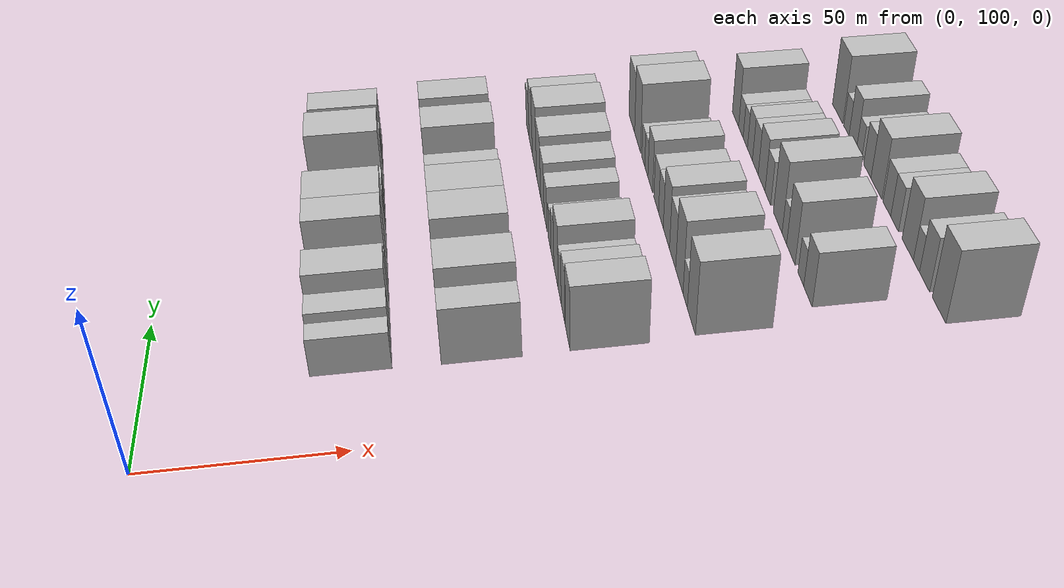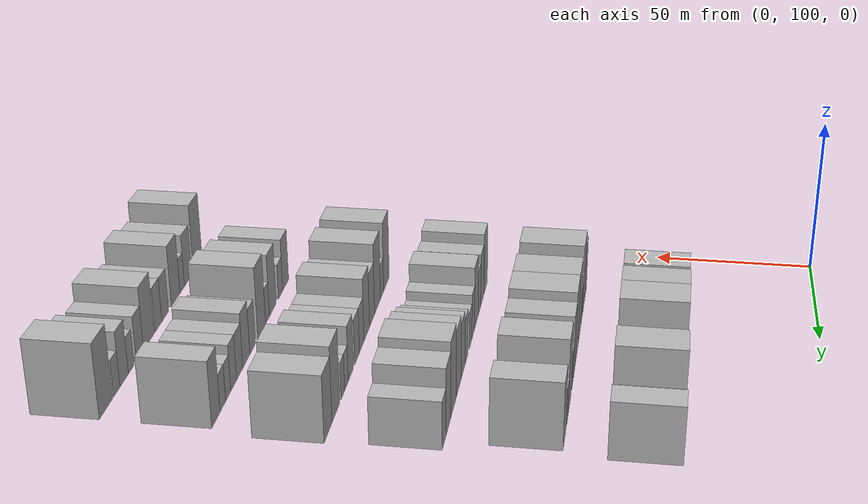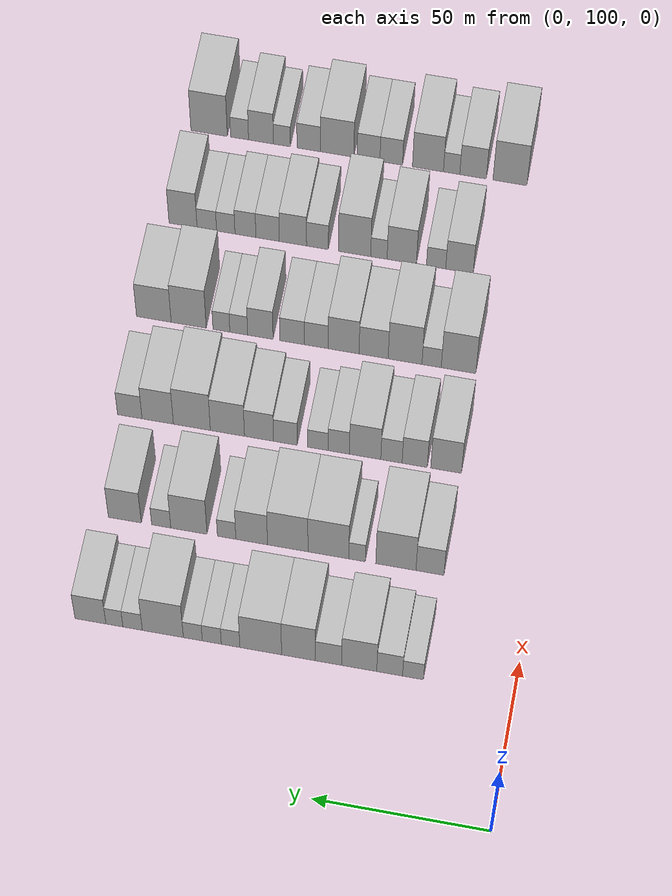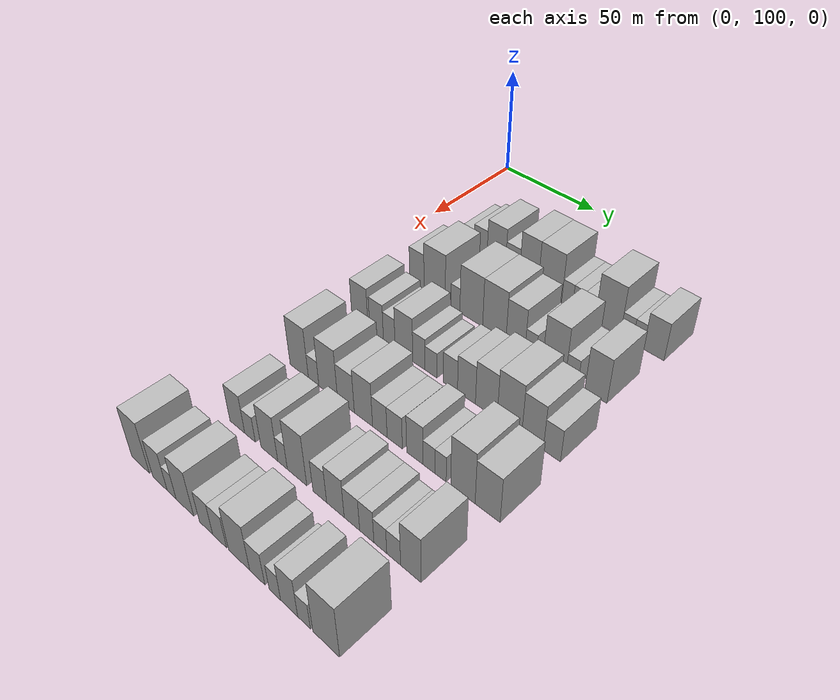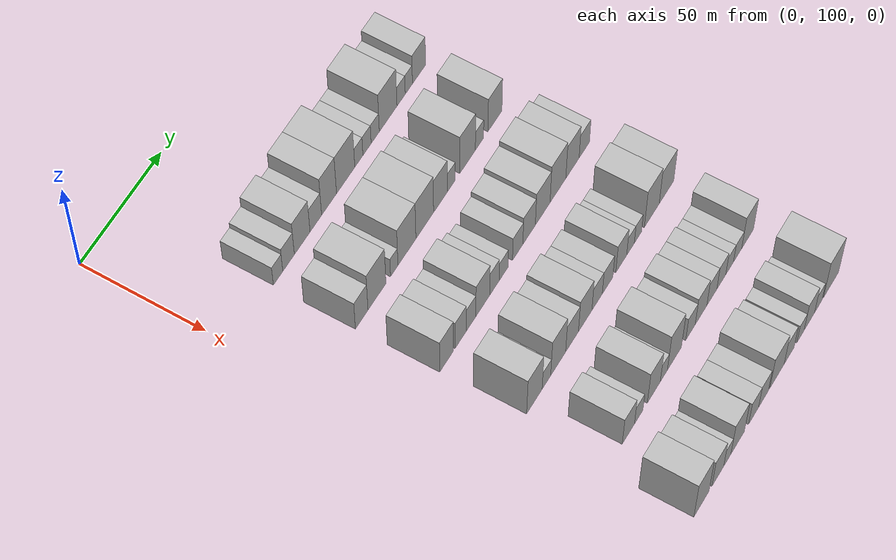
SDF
<sdf version="1.6">
 <world name="default">
  <model name="building_72">
   <static>1</static>
   <pose>50.0000 128.7161 0 0.000000 0.000000 0.000000</pose>
   <link name="link">
    <pose>0 0 6.00 0 0 0</pose>
    <collision name="collision"><geometry><box><size>20.0000 5.9323 12.0000</size></box></geometry></collision>
    <visual name="visual">
     <cast_shadows>0</cast_shadows>
     <geometry><box><size>20.0000 5.9323 12.0000</size></box></geometry>
     <material>
      <script>
       <uri>model://HANNAS_wall/materials/scripts</uri>
       <uri>model://HANNAS_wall/materials/textures</uri>
       <name>vrc/HANNAS_wall</name>
      </script>
     </material>
    </visual>
   </link>
  </model>
  <model name="building_73">
   <static>1</static>
   <pose>50.0000 135.3491 0 0.000000 0.000000 0.000000</pose>
   <link name="link">
    <pose>0 0 7.50 0 0 0</pose>
    <collision name="collision"><geometry><box><size>20.0000 7.3336 15.0000</size></box></geometry></collision>
    <visual name="visual">
     <cast_shadows>0</cast_shadows>
     <geometry><box><size>20.0000 7.3336 15.0000</size></box></geometry>
     <material>
      <script>
       <uri>model://HANNAS_wall/materials/scripts</uri>
       <uri>model://HANNAS_wall/materials/textures</uri>
       <name>vrc/HANNAS_wall</name>
      </script>
     </material>
    </visual>
   </link>
  </model>
  <model name="building_74">
   <static>1</static>
   <pose>50.0000 144.0091 0 0.000000 0.000000 0.000000</pose>
   <link name="link">
    <pose>0 0 10.50 0 0 0</pose>
    <collision name="collision"><geometry><box><size>20.0000 9.9865 21.0000</size></box></geometry></collision>
    <visual name="visual">
     <cast_shadows>0</cast_shadows>
     <geometry><box><size>20.0000 9.9865 21.0000</size></box></geometry>
     <material>
      <script>
       <uri>model://HANNAS_wall/materials/scripts</uri>
       <uri>model://HANNAS_wall/materials/textures</uri>
       <name>vrc/HANNAS_wall</name>
      </script>
     </material>
    </visual>
   </link>
  </model>
  <model name="building_75">
   <static>1</static>
   <pose>50.0000 152.7264 0 0.000000 0.000000 0.000000</pose>
   <link name="link">
    <pose>0 0 7.50 0 0 0</pose>
    <collision name="collision"><geometry><box><size>20.0000 7.4480 15.0000</size></box></geometry></collision>
    <visual name="visual">
     <cast_shadows>0</cast_shadows>
     <geometry><box><size>20.0000 7.4480 15.0000</size></box></geometry>
     <material>
      <script>
       <uri>model://HANNAS_wall/materials/scripts</uri>
       <uri>model://HANNAS_wall/materials/textures</uri>
       <name>vrc/HANNAS_wall</name>
      </script>
     </material>
    </visual>
   </link>
  </model>
  <model name="building_76">
   <static>1</static>
   <pose>50.0000 161.2679 0 0.000000 0.000000 0.000000</pose>
   <link name="link">
    <pose>0 0 12.00 0 0 0</pose>
    <collision name="collision"><geometry><box><size>20.0000 9.6351 24.0000</size></box></geometry></collision>
    <visual name="visual">
     <cast_shadows>0</cast_shadows>
     <geometry><box><size>20.0000 9.6351 24.0000</size></box></geometry>
     <material>
      <script>
       <uri>model://HANNAS_wall/materials/scripts</uri>
       <uri>model://HANNAS_wall/materials/textures</uri>
       <name>vrc/HANNAS_wall</name>
      </script>
     </material>
    </visual>
   </link>
  </model>
  <model name="building_77">
   <static>1</static>
   <pose>50.0000 172.0378 0 0.000000 0.000000 0.000000</pose>
   <link name="link">
    <pose>0 0 12.00 0 0 0</pose>
    <collision name="collision"><geometry><box><size>20.0000 11.9045 24.0000</size></box></geometry></collision>
    <visual name="visual">
     <cast_shadows>0</cast_shadows>
     <geometry><box><size>20.0000 11.9045 24.0000</size></box></geometry>
     <material>
      <script>
       <uri>model://HANNAS_wall/materials/scripts</uri>
       <uri>model://HANNAS_wall/materials/textures</uri>
       <name>vrc/HANNAS_wall</name>
      </script>
     </material>
    </visual>
   </link>
  </model>
  <model name="building_78">
   <static>1</static>
   <pose>50.0000 180.6485 0 0.000000 0.000000 0.000000</pose>
   <link name="link">
    <pose>0 0 6.00 0 0 0</pose>
    <collision name="collision"><geometry><box><size>20.0000 5.3170 12.0000</size></box></geometry></collision>
    <visual name="visual">
     <cast_shadows>0</cast_shadows>
     <geometry><box><size>20.0000 5.3170 12.0000</size></box></geometry>
     <material>
      <script>
       <uri>model://HANNAS_wall/materials/scripts</uri>
       <uri>model://HANNAS_wall/materials/textures</uri>
       <name>vrc/HANNAS_wall</name>
      </script>
     </material>
    </visual>
   </link>
  </model>
  <model name="building_79">
   <static>1</static>
   <pose>50.0000 186.0152 0 0.000000 0.000000 0.000000</pose>
   <link name="link">
    <pose>0 0 6.00 0 0 0</pose>
    <collision name="collision"><geometry><box><size>20.0000 5.4164 12.0000</size></box></geometry></collision>
    <visual name="visual">
     <cast_shadows>0</cast_shadows>
     <geometry><box><size>20.0000 5.4164 12.0000</size></box></geometry>
     <material>
      <script>
       <uri>model://HANNAS_wall/materials/scripts</uri>
       <uri>model://HANNAS_wall/materials/textures</uri>
       <name>vrc/HANNAS_wall</name>
      </script>
     </material>
    </visual>
   </link>
  </model>
  <model name="building_80">
   <static>1</static>
   <pose>50.0000 191.4409 0 0.000000 0.000000 0.000000</pose>
   <link name="link">
    <pose>0 0 6.00 0 0 0</pose>
    <collision name="collision"><geometry><box><size>20.0000 5.4349 12.0000</size></box></geometry></collision>
    <visual name="visual">
     <cast_shadows>0</cast_shadows>
     <geometry><box><size>20.0000 5.4349 12.0000</size></box></geometry>
     <material>
      <script>
       <uri>model://HANNAS_wall/materials/scripts</uri>
       <uri>model://HANNAS_wall/materials/textures</uri>
       <name>vrc/HANNAS_wall</name>
      </script>
     </material>
    </visual>
   </link>
  </model>
  <model name="building_81">
   <static>1</static>
   <pose>50.0000 200.0442 0 0.000000 0.000000 0.000000</pose>
   <link name="link">
    <pose>0 0 12.00 0 0 0</pose>
    <collision name="collision"><geometry><box><size>20.0000 11.7718 24.0000</size></box></geometry></collision>
    <visual name="visual">
     <cast_shadows>0</cast_shadows>
     <geometry><box><size>20.0000 11.7718 24.0000</size></box></geometry>
     <material>
      <script>
       <uri>model://HANNAS_wall/materials/scripts</uri>
       <uri>model://HANNAS_wall/materials/textures</uri>
       <name>vrc/HANNAS_wall</name>
      </script>
     </material>
    </visual>
   </link>
  </model>
  <model name="building_82">
   <static>1</static>
   <pose>50.0000 208.7123 0 0.000000 0.000000 0.000000</pose>
   <link name="link">
    <pose>0 0 6.00 0 0 0</pose>
    <collision name="collision"><geometry><box><size>20.0000 5.5643 12.0000</size></box></geometry></collision>
    <visual name="visual">
     <cast_shadows>0</cast_shadows>
     <geometry><box><size>20.0000 5.5643 12.0000</size></box></geometry>
     <material>
      <script>
       <uri>model://HANNAS_wall/materials/scripts</uri>
       <uri>model://HANNAS_wall/materials/textures</uri>
       <name>vrc/HANNAS_wall</name>
      </script>
     </material>
    </visual>
   </link>
  </model>
  <model name="building_83">
   <static>1</static>
   <pose>50.0000 213.9297 0 0.000000 0.000000 0.000000</pose>
   <link name="link">
    <pose>0 0 6.00 0 0 0</pose>
    <collision name="collision"><geometry><box><size>20.0000 4.8705 12.0000</size></box></geometry></collision>
    <visual name="visual">
     <cast_shadows>0</cast_shadows>
     <geometry><box><size>20.0000 4.8705 12.0000</size></box></geometry>
     <material>
      <script>
       <uri>model://HANNAS_wall/materials/scripts</uri>
       <uri>model://HANNAS_wall/materials/textures</uri>
       <name>vrc/HANNAS_wall</name>
      </script>
     </material>
    </visual>
   </link>
  </model>
  <model name="building_84">
   <static>1</static>
   <pose>50.0000 220.8197 0 0.000000 0.000000 0.000000</pose>
   <link name="link">
    <pose>0 0 9.00 0 0 0</pose>
    <collision name="collision"><geometry><box><size>20.0000 8.9095 18.0000</size></box></geometry></collision>
    <visual name="visual">
     <cast_shadows>0</cast_shadows>
     <geometry><box><size>20.0000 8.9095 18.0000</size></box></geometry>
     <material>
      <script>
       <uri>model://HANNAS_wall/materials/scripts</uri>
       <uri>model://HANNAS_wall/materials/textures</uri>
       <name>vrc/HANNAS_wall</name>
      </script>
     </material>
    </visual>
   </link>
  </model>
  <model name="building_195">
   <static>1</static>
   <pose>82.0000 129.4393 0 0.000000 0.000000 0.000000</pose>
   <link name="link">
    <pose>0 0 9.00 0 0 0</pose>
    <collision name="collision"><geometry><box><size>20.0000 8.0487 18.0000</size></box></geometry></collision>
    <visual name="visual">
     <cast_shadows>0</cast_shadows>
     <geometry><box><size>20.0000 8.0487 18.0000</size></box></geometry>
     <material>
      <script>
       <uri>model://HANNAS_wall/materials/scripts</uri>
       <uri>model://HANNAS_wall/materials/textures</uri>
       <name>vrc/HANNAS_wall</name>
      </script>
     </material>
    </visual>
   </link>
  </model>
  <model name="building_196">
   <static>1</static>
   <pose>82.0000 139.2432 0 0.000000 0.000000 0.000000</pose>
   <link name="link">
    <pose>0 0 12.00 0 0 0</pose>
    <collision name="collision"><geometry><box><size>20.0000 11.5591 24.0000</size></box></geometry></collision>
    <visual name="visual">
     <cast_shadows>0</cast_shadows>
     <geometry><box><size>20.0000 11.5591 24.0000</size></box></geometry>
     <material>
      <script>
       <uri>model://HANNAS_wall/materials/scripts</uri>
       <uri>model://HANNAS_wall/materials/textures</uri>
       <name>vrc/HANNAS_wall</name>
      </script>
     </material>
    </visual>
   </link>
  </model>
  <model name="building_197">
   <static>1</static>
   <pose>82.0000 150.4244 0 0.000000 0.000000 0.000000</pose>
   <link name="link">
    <pose>0 0 6.00 0 0 0</pose>
    <collision name="collision"><geometry><box><size>20.0000 4.8032 12.0000</size></box></geometry></collision>
    <visual name="visual">
     <cast_shadows>0</cast_shadows>
     <geometry><box><size>20.0000 4.8032 12.0000</size></box></geometry>
     <material>
      <script>
       <uri>model://HANNAS_wall/materials/scripts</uri>
       <uri>model://HANNAS_wall/materials/textures</uri>
       <name>vrc/HANNAS_wall</name>
      </script>
     </material>
    </visual>
   </link>
  </model>
  <model name="building_198">
   <static>1</static>
   <pose>82.0000 158.7117 0 0.000000 0.000000 0.000000</pose>
   <link name="link">
    <pose>0 0 12.00 0 0 0</pose>
    <collision name="collision"><geometry><box><size>20.0000 11.7715 24.0000</size></box></geometry></collision>
    <visual name="visual">
     <cast_shadows>0</cast_shadows>
     <geometry><box><size>20.0000 11.7715 24.0000</size></box></geometry>
     <material>
      <script>
       <uri>model://HANNAS_wall/materials/scripts</uri>
       <uri>model://HANNAS_wall/materials/textures</uri>
       <name>vrc/HANNAS_wall</name>
      </script>
     </material>
    </visual>
   </link>
  </model>
  <model name="building_199">
   <static>1</static>
   <pose>82.0000 170.4356 0 0.000000 0.000000 0.000000</pose>
   <link name="link">
    <pose>0 0 12.00 0 0 0</pose>
    <collision name="collision"><geometry><box><size>20.0000 11.6763 24.0000</size></box></geometry></collision>
    <visual name="visual">
     <cast_shadows>0</cast_shadows>
     <geometry><box><size>20.0000 11.6763 24.0000</size></box></geometry>
     <material>
      <script>
       <uri>model://HANNAS_wall/materials/scripts</uri>
       <uri>model://HANNAS_wall/materials/textures</uri>
       <name>vrc/HANNAS_wall</name>
      </script>
     </material>
    </visual>
   </link>
  </model>
  <model name="building_200">
   <static>1</static>
   <pose>82.0000 180.8566 0 0.000000 0.000000 0.000000</pose>
   <link name="link">
    <pose>0 0 10.50 0 0 0</pose>
    <collision name="collision"><geometry><box><size>20.0000 9.1656 21.0000</size></box></geometry></collision>
    <visual name="visual">
     <cast_shadows>0</cast_shadows>
     <geometry><box><size>20.0000 9.1656 21.0000</size></box></geometry>
     <material>
      <script>
       <uri>model://HANNAS_wall/materials/scripts</uri>
       <uri>model://HANNAS_wall/materials/textures</uri>
       <name>vrc/HANNAS_wall</name>
      </script>
     </material>
    </visual>
   </link>
  </model>
  <model name="building_201">
   <static>1</static>
   <pose>82.0000 188.1111 0 0.000000 0.000000 0.000000</pose>
   <link name="link">
    <pose>0 0 6.00 0 0 0</pose>
    <collision name="collision"><geometry><box><size>20.0000 5.3434 12.0000</size></box></geometry></collision>
    <visual name="visual">
     <cast_shadows>0</cast_shadows>
     <geometry><box><size>20.0000 5.3434 12.0000</size></box></geometry>
     <material>
      <script>
       <uri>model://HANNAS_wall/materials/scripts</uri>
       <uri>model://HANNAS_wall/materials/textures</uri>
       <name>vrc/HANNAS_wall</name>
      </script>
     </material>
    </visual>
   </link>
  </model>
  <model name="building_202">
   <static>1</static>
   <pose>82.0000 199.0524 0 0.000000 0.000000 0.000000</pose>
   <link name="link">
    <pose>0 0 12.00 0 0 0</pose>
    <collision name="collision"><geometry><box><size>20.0000 10.5392 24.0000</size></box></geometry></collision>
    <visual name="visual">
     <cast_shadows>0</cast_shadows>
     <geometry><box><size>20.0000 10.5392 24.0000</size></box></geometry>
     <material>
      <script>
       <uri>model://HANNAS_wall/materials/scripts</uri>
       <uri>model://HANNAS_wall/materials/textures</uri>
       <name>vrc/HANNAS_wall</name>
      </script>
     </material>
    </visual>
   </link>
  </model>
  <model name="building_203">
   <static>1</static>
   <pose>82.0000 207.1091 0 0.000000 0.000000 0.000000</pose>
   <link name="link">
    <pose>0 0 6.00 0 0 0</pose>
    <collision name="collision"><geometry><box><size>20.0000 5.5742 12.0000</size></box></geometry></collision>
    <visual name="visual">
     <cast_shadows>0</cast_shadows>
     <geometry><box><size>20.0000 5.5742 12.0000</size></box></geometry>
     <material>
      <script>
       <uri>model://HANNAS_wall/materials/scripts</uri>
       <uri>model://HANNAS_wall/materials/textures</uri>
       <name>vrc/HANNAS_wall</name>
      </script>
     </material>
    </visual>
   </link>
  </model>
  <model name="building_204">
   <static>1</static>
   <pose>82.0000 217.6840 0 0.000000 0.000000 0.000000</pose>
   <link name="link">
    <pose>0 0 10.50 0 0 0</pose>
    <collision name="collision"><geometry><box><size>20.0000 9.5755 21.0000</size></box></geometry></collision>
    <visual name="visual">
     <cast_shadows>0</cast_shadows>
     <geometry><box><size>20.0000 9.5755 21.0000</size></box></geometry>
     <material>
      <script>
       <uri>model://HANNAS_wall/materials/scripts</uri>
       <uri>model://HANNAS_wall/materials/textures</uri>
       <name>vrc/HANNAS_wall</name>
      </script>
     </material>
    </visual>
   </link>
  </model>
  <model name="building_312">
   <static>1</static>
   <pose>114.0000 130.2601 0 0.000000 0.000000 0.000000</pose>
   <link name="link">
    <pose>0 0 10.50 0 0 0</pose>
    <collision name="collision"><geometry><box><size>20.0000 8.9556 21.0000</size></box></geometry></collision>
    <visual name="visual">
     <cast_shadows>0</cast_shadows>
     <geometry><box><size>20.0000 8.9556 21.0000</size></box></geometry>
     <material>
      <script>
       <uri>model://HANNAS_wall/materials/scripts</uri>
       <uri>model://HANNAS_wall/materials/textures</uri>
       <name>vrc/HANNAS_wall</name>
      </script>
     </material>
    </visual>
   </link>
  </model>
  <model name="building_313">
   <static>1</static>
   <pose>114.0000 139.4074 0 0.000000 0.000000 0.000000</pose>
   <link name="link">
    <pose>0 0 9.00 0 0 0</pose>
    <collision name="collision"><geometry><box><size>20.0000 7.3390 18.0000</size></box></geometry></collision>
    <visual name="visual">
     <cast_shadows>0</cast_shadows>
     <geometry><box><size>20.0000 7.3390 18.0000</size></box></geometry>
     <material>
      <script>
       <uri>model://HANNAS_wall/materials/scripts</uri>
       <uri>model://HANNAS_wall/materials/textures</uri>
       <name>vrc/HANNAS_wall</name>
      </script>
     </material>
    </visual>
   </link>
  </model>
  <model name="building_314">
   <static>1</static>
   <pose>114.0000 146.1821 0 0.000000 0.000000 0.000000</pose>
   <link name="link">
    <pose>0 0 7.50 0 0 0</pose>
    <collision name="collision"><geometry><box><size>20.0000 6.2103 15.0000</size></box></geometry></collision>
    <visual name="visual">
     <cast_shadows>0</cast_shadows>
     <geometry><box><size>20.0000 6.2103 15.0000</size></box></geometry>
     <material>
      <script>
       <uri>model://HANNAS_wall/materials/scripts</uri>
       <uri>model://HANNAS_wall/materials/textures</uri>
       <name>vrc/HANNAS_wall</name>
      </script>
     </material>
    </visual>
   </link>
  </model>
  <model name="building_315">
   <static>1</static>
   <pose>114.0000 153.8837 0 0.000000 0.000000 0.000000</pose>
   <link name="link">
    <pose>0 0 10.50 0 0 0</pose>
    <collision name="collision"><geometry><box><size>20.0000 9.1930 21.0000</size></box></geometry></collision>
    <visual name="visual">
     <cast_shadows>0</cast_shadows>
     <geometry><box><size>20.0000 9.1930 21.0000</size></box></geometry>
     <material>
      <script>
       <uri>model://HANNAS_wall/materials/scripts</uri>
       <uri>model://HANNAS_wall/materials/textures</uri>
       <name>vrc/HANNAS_wall</name>
      </script>
     </material>
    </visual>
   </link>
  </model>
  <model name="building_316">
   <static>1</static>
   <pose>114.0000 161.6175 0 0.000000 0.000000 0.000000</pose>
   <link name="link">
    <pose>0 0 7.50 0 0 0</pose>
    <collision name="collision"><geometry><box><size>20.0000 6.2747 15.0000</size></box></geometry></collision>
    <visual name="visual">
     <cast_shadows>0</cast_shadows>
     <geometry><box><size>20.0000 6.2747 15.0000</size></box></geometry>
     <material>
      <script>
       <uri>model://HANNAS_wall/materials/scripts</uri>
       <uri>model://HANNAS_wall/materials/textures</uri>
       <name>vrc/HANNAS_wall</name>
      </script>
     </material>
    </visual>
   </link>
  </model>
  <model name="building_317">
   <static>1</static>
   <pose>114.0000 167.7389 0 0.000000 0.000000 0.000000</pose>
   <link name="link">
    <pose>0 0 6.00 0 0 0</pose>
    <collision name="collision"><geometry><box><size>20.0000 5.9681 12.0000</size></box></geometry></collision>
    <visual name="visual">
     <cast_shadows>0</cast_shadows>
     <geometry><box><size>20.0000 5.9681 12.0000</size></box></geometry>
     <material>
      <script>
       <uri>model://HANNAS_wall/materials/scripts</uri>
       <uri>model://HANNAS_wall/materials/textures</uri>
       <name>vrc/HANNAS_wall</name>
      </script>
     </material>
    </visual>
   </link>
  </model>
  <model name="building_318">
   <static>1</static>
   <pose>114.0000 177.2046 0 0.000000 0.000000 0.000000</pose>
   <link name="link">
    <pose>0 0 7.50 0 0 0</pose>
    <collision name="collision"><geometry><box><size>20.0000 6.9633 15.0000</size></box></geometry></collision>
    <visual name="visual">
     <cast_shadows>0</cast_shadows>
     <geometry><box><size>20.0000 6.9633 15.0000</size></box></geometry>
     <material>
      <script>
       <uri>model://HANNAS_wall/materials/scripts</uri>
       <uri>model://HANNAS_wall/materials/textures</uri>
       <name>vrc/HANNAS_wall</name>
      </script>
     </material>
    </visual>
   </link>
  </model>
  <model name="building_319">
   <static>1</static>
   <pose>114.0000 184.9401 0 0.000000 0.000000 0.000000</pose>
   <link name="link">
    <pose>0 0 9.00 0 0 0</pose>
    <collision name="collision"><geometry><box><size>20.0000 8.5078 18.0000</size></box></geometry></collision>
    <visual name="visual">
     <cast_shadows>0</cast_shadows>
     <geometry><box><size>20.0000 8.5078 18.0000</size></box></geometry>
     <material>
      <script>
       <uri>model://HANNAS_wall/materials/scripts</uri>
       <uri>model://HANNAS_wall/materials/textures</uri>
       <name>vrc/HANNAS_wall</name>
      </script>
     </material>
    </visual>
   </link>
  </model>
  <model name="building_320">
   <static>1</static>
   <pose>114.0000 194.2106 0 0.000000 0.000000 0.000000</pose>
   <link name="link">
    <pose>0 0 10.50 0 0 0</pose>
    <collision name="collision"><geometry><box><size>20.0000 10.0331 21.0000</size></box></geometry></collision>
    <visual name="visual">
     <cast_shadows>0</cast_shadows>
     <geometry><box><size>20.0000 10.0331 21.0000</size></box></geometry>
     <material>
      <script>
       <uri>model://HANNAS_wall/materials/scripts</uri>
       <uri>model://HANNAS_wall/materials/textures</uri>
       <name>vrc/HANNAS_wall</name>
      </script>
     </material>
    </visual>
   </link>
  </model>
  <model name="building_321">
   <static>1</static>
   <pose>114.0000 204.6751 0 0.000000 0.000000 0.000000</pose>
   <link name="link">
    <pose>0 0 12.00 0 0 0</pose>
    <collision name="collision"><geometry><box><size>20.0000 10.8959 24.0000</size></box></geometry></collision>
    <visual name="visual">
     <cast_shadows>0</cast_shadows>
     <geometry><box><size>20.0000 10.8959 24.0000</size></box></geometry>
     <material>
      <script>
       <uri>model://HANNAS_wall/materials/scripts</uri>
       <uri>model://HANNAS_wall/materials/textures</uri>
       <name>vrc/HANNAS_wall</name>
      </script>
     </material>
    </visual>
   </link>
  </model>
  <model name="building_322">
   <static>1</static>
   <pose>114.0000 214.7455 0 0.000000 0.000000 0.000000</pose>
   <link name="link">
    <pose>0 0 10.50 0 0 0</pose>
    <collision name="collision"><geometry><box><size>20.0000 9.2450 21.0000</size></box></geometry></collision>
    <visual name="visual">
     <cast_shadows>0</cast_shadows>
     <geometry><box><size>20.0000 9.2450 21.0000</size></box></geometry>
     <material>
      <script>
       <uri>model://HANNAS_wall/materials/scripts</uri>
       <uri>model://HANNAS_wall/materials/textures</uri>
       <name>vrc/HANNAS_wall</name>
      </script>
     </material>
    </visual>
   </link>
  </model>
  <model name="building_323">
   <static>1</static>
   <pose>114.0000 222.9857 0 0.000000 0.000000 0.000000</pose>
   <link name="link">
    <pose>0 0 7.50 0 0 0</pose>
    <collision name="collision"><geometry><box><size>20.0000 7.2353 15.0000</size></box></geometry></collision>
    <visual name="visual">
     <cast_shadows>0</cast_shadows>
     <geometry><box><size>20.0000 7.2353 15.0000</size></box></geometry>
     <material>
      <script>
       <uri>model://HANNAS_wall/materials/scripts</uri>
       <uri>model://HANNAS_wall/materials/textures</uri>
       <name>vrc/HANNAS_wall</name>
      </script>
     </material>
    </visual>
   </link>
  </model>
  <model name="building_433">
   <static>1</static>
   <pose>146.0000 132.0406 0 0.000000 0.000000 0.000000</pose>
   <link name="link">
    <pose>0 0 12.00 0 0 0</pose>
    <collision name="collision"><geometry><box><size>20.0000 10.2193 24.0000</size></box></geometry></collision>
    <visual name="visual">
     <cast_shadows>0</cast_shadows>
     <geometry><box><size>20.0000 10.2193 24.0000</size></box></geometry>
     <material>
      <script>
       <uri>model://HANNAS_wall/materials/scripts</uri>
       <uri>model://HANNAS_wall/materials/textures</uri>
       <name>vrc/HANNAS_wall</name>
      </script>
     </material>
    </visual>
   </link>
  </model>
  <model name="building_434">
   <static>1</static>
   <pose>146.0000 139.9927 0 0.000000 0.000000 0.000000</pose>
   <link name="link">
    <pose>0 0 6.00 0 0 0</pose>
    <collision name="collision"><geometry><box><size>20.0000 5.6848 12.0000</size></box></geometry></collision>
    <visual name="visual">
     <cast_shadows>0</cast_shadows>
     <geometry><box><size>20.0000 5.6848 12.0000</size></box></geometry>
     <material>
      <script>
       <uri>model://HANNAS_wall/materials/scripts</uri>
       <uri>model://HANNAS_wall/materials/textures</uri>
       <name>vrc/HANNAS_wall</name>
      </script>
     </material>
    </visual>
   </link>
  </model>
  <model name="building_435">
   <static>1</static>
   <pose>146.0000 147.8298 0 0.000000 0.000000 0.000000</pose>
   <link name="link">
    <pose>0 0 12.00 0 0 0</pose>
    <collision name="collision"><geometry><box><size>20.0000 9.9893 24.0000</size></box></geometry></collision>
    <visual name="visual">
     <cast_shadows>0</cast_shadows>
     <geometry><box><size>20.0000 9.9893 24.0000</size></box></geometry>
     <material>
      <script>
       <uri>model://HANNAS_wall/materials/scripts</uri>
       <uri>model://HANNAS_wall/materials/textures</uri>
       <name>vrc/HANNAS_wall</name>
      </script>
     </material>
    </visual>
   </link>
  </model>
  <model name="building_436">
   <static>1</static>
   <pose>146.0000 157.1355 0 0.000000 0.000000 0.000000</pose>
   <link name="link">
    <pose>0 0 9.00 0 0 0</pose>
    <collision name="collision"><geometry><box><size>20.0000 8.6221 18.0000</size></box></geometry></collision>
    <visual name="visual">
     <cast_shadows>0</cast_shadows>
     <geometry><box><size>20.0000 8.6221 18.0000</size></box></geometry>
     <material>
      <script>
       <uri>model://HANNAS_wall/materials/scripts</uri>
       <uri>model://HANNAS_wall/materials/textures</uri>
       <name>vrc/HANNAS_wall</name>
      </script>
     </material>
    </visual>
   </link>
  </model>
  <model name="building_437">
   <static>1</static>
   <pose>146.0000 166.0156 0 0.000000 0.000000 0.000000</pose>
   <link name="link">
    <pose>0 0 10.50 0 0 0</pose>
    <collision name="collision"><geometry><box><size>20.0000 9.1381 21.0000</size></box></geometry></collision>
    <visual name="visual">
     <cast_shadows>0</cast_shadows>
     <geometry><box><size>20.0000 9.1381 21.0000</size></box></geometry>
     <material>
      <script>
       <uri>model://HANNAS_wall/materials/scripts</uri>
       <uri>model://HANNAS_wall/materials/textures</uri>
       <name>vrc/HANNAS_wall</name>
      </script>
     </material>
    </visual>
   </link>
  </model>
  <model name="building_438">
   <static>1</static>
   <pose>146.0000 174.1381 0 0.000000 0.000000 0.000000</pose>
   <link name="link">
    <pose>0 0 7.50 0 0 0</pose>
    <collision name="collision"><geometry><box><size>20.0000 7.1068 15.0000</size></box></geometry></collision>
    <visual name="visual">
     <cast_shadows>0</cast_shadows>
     <geometry><box><size>20.0000 7.1068 15.0000</size></box></geometry>
     <material>
      <script>
       <uri>model://HANNAS_wall/materials/scripts</uri>
       <uri>model://HANNAS_wall/materials/textures</uri>
       <name>vrc/HANNAS_wall</name>
      </script>
     </material>
    </visual>
   </link>
  </model>
  <model name="building_439">
   <static>1</static>
   <pose>146.0000 181.3263 0 0.000000 0.000000 0.000000</pose>
   <link name="link">
    <pose>0 0 7.50 0 0 0</pose>
    <collision name="collision"><geometry><box><size>20.0000 7.2695 15.0000</size></box></geometry></collision>
    <visual name="visual">
     <cast_shadows>0</cast_shadows>
     <geometry><box><size>20.0000 7.2695 15.0000</size></box></geometry>
     <material>
      <script>
       <uri>model://HANNAS_wall/materials/scripts</uri>
       <uri>model://HANNAS_wall/materials/textures</uri>
       <name>vrc/HANNAS_wall</name>
      </script>
     </material>
    </visual>
   </link>
  </model>
  <model name="building_440">
   <static>1</static>
   <pose>146.0000 190.7427 0 0.000000 0.000000 0.000000</pose>
   <link name="link">
    <pose>0 0 9.00 0 0 0</pose>
    <collision name="collision"><geometry><box><size>20.0000 7.5633 18.0000</size></box></geometry></collision>
    <visual name="visual">
     <cast_shadows>0</cast_shadows>
     <geometry><box><size>20.0000 7.5633 18.0000</size></box></geometry>
     <material>
      <script>
       <uri>model://HANNAS_wall/materials/scripts</uri>
       <uri>model://HANNAS_wall/materials/textures</uri>
       <name>vrc/HANNAS_wall</name>
      </script>
     </material>
    </visual>
   </link>
  </model>
  <model name="building_441">
   <static>1</static>
   <pose>146.0000 197.1808 0 0.000000 0.000000 0.000000</pose>
   <link name="link">
    <pose>0 0 6.00 0 0 0</pose>
    <collision name="collision"><geometry><box><size>20.0000 5.3129 12.0000</size></box></geometry></collision>
    <visual name="visual">
     <cast_shadows>0</cast_shadows>
     <geometry><box><size>20.0000 5.3129 12.0000</size></box></geometry>
     <material>
      <script>
       <uri>model://HANNAS_wall/materials/scripts</uri>
       <uri>model://HANNAS_wall/materials/textures</uri>
       <name>vrc/HANNAS_wall</name>
      </script>
     </material>
    </visual>
   </link>
  </model>
  <model name="building_442">
   <static>1</static>
   <pose>146.0000 202.3487 0 0.000000 0.000000 0.000000</pose>
   <link name="link">
    <pose>0 0 6.00 0 0 0</pose>
    <collision name="collision"><geometry><box><size>20.0000 5.0229 12.0000</size></box></geometry></collision>
    <visual name="visual">
     <cast_shadows>0</cast_shadows>
     <geometry><box><size>20.0000 5.0229 12.0000</size></box></geometry>
     <material>
      <script>
       <uri>model://HANNAS_wall/materials/scripts</uri>
       <uri>model://HANNAS_wall/materials/textures</uri>
       <name>vrc/HANNAS_wall</name>
      </script>
     </material>
    </visual>
   </link>
  </model>
  <model name="building_443">
   <static>1</static>
   <pose>146.0000 212.1005 0 0.000000 0.000000 0.000000</pose>
   <link name="link">
    <pose>0 0 12.00 0 0 0</pose>
    <collision name="collision"><geometry><box><size>20.0000 10.4806 24.0000</size></box></geometry></collision>
    <visual name="visual">
     <cast_shadows>0</cast_shadows>
     <geometry><box><size>20.0000 10.4806 24.0000</size></box></geometry>
     <material>
      <script>
       <uri>model://HANNAS_wall/materials/scripts</uri>
       <uri>model://HANNAS_wall/materials/textures</uri>
       <name>vrc/HANNAS_wall</name>
      </script>
     </material>
    </visual>
   </link>
  </model>
  <model name="building_444">
   <static>1</static>
   <pose>146.0000 222.5134 0 0.000000 0.000000 0.000000</pose>
   <link name="link">
    <pose>0 0 10.50 0 0 0</pose>
    <collision name="collision"><geometry><box><size>20.0000 10.3452 21.0000</size></box></geometry></collision>
    <visual name="visual">
     <cast_shadows>0</cast_shadows>
     <geometry><box><size>20.0000 10.3452 21.0000</size></box></geometry>
     <material>
      <script>
       <uri>model://HANNAS_wall/materials/scripts</uri>
       <uri>model://HANNAS_wall/materials/textures</uri>
       <name>vrc/HANNAS_wall</name>
      </script>
     </material>
    </visual>
   </link>
  </model>
  <model name="building_546">
   <static>1</static>
   <pose>178.0000 137.1754 0 0.000000 0.000000 0.000000</pose>
   <link name="link">
    <pose>0 0 9.00 0 0 0</pose>
    <collision name="collision"><geometry><box><size>20.0000 8.2209 18.0000</size></box></geometry></collision>
    <visual name="visual">
     <cast_shadows>0</cast_shadows>
     <geometry><box><size>20.0000 8.2209 18.0000</size></box></geometry>
     <material>
      <script>
       <uri>model://HANNAS_wall/materials/scripts</uri>
       <uri>model://HANNAS_wall/materials/textures</uri>
       <name>vrc/HANNAS_wall</name>
      </script>
     </material>
    </visual>
   </link>
  </model>
  <model name="building_547">
   <static>1</static>
   <pose>178.0000 144.1660 0 0.000000 0.000000 0.000000</pose>
   <link name="link">
    <pose>0 0 6.00 0 0 0</pose>
    <collision name="collision"><geometry><box><size>20.0000 5.7604 12.0000</size></box></geometry></collision>
    <visual name="visual">
     <cast_shadows>0</cast_shadows>
     <geometry><box><size>20.0000 5.7604 12.0000</size></box></geometry>
     <material>
      <script>
       <uri>model://HANNAS_wall/materials/scripts</uri>
       <uri>model://HANNAS_wall/materials/textures</uri>
       <name>vrc/HANNAS_wall</name>
      </script>
     </material>
    </visual>
   </link>
  </model>
  <model name="building_548">
   <static>1</static>
   <pose>178.0000 154.4474 0 0.000000 0.000000 0.000000</pose>
   <link name="link">
    <pose>0 0 10.50 0 0 0</pose>
    <collision name="collision"><geometry><box><size>20.0000 8.8024 21.0000</size></box></geometry></collision>
    <visual name="visual">
     <cast_shadows>0</cast_shadows>
     <geometry><box><size>20.0000 8.8024 21.0000</size></box></geometry>
     <material>
      <script>
       <uri>model://HANNAS_wall/materials/scripts</uri>
       <uri>model://HANNAS_wall/materials/textures</uri>
       <name>vrc/HANNAS_wall</name>
      </script>
     </material>
    </visual>
   </link>
  </model>
  <model name="building_549">
   <static>1</static>
   <pose>178.0000 161.3017 0 0.000000 0.000000 0.000000</pose>
   <link name="link">
    <pose>0 0 6.00 0 0 0</pose>
    <collision name="collision"><geometry><box><size>20.0000 4.9062 12.0000</size></box></geometry></collision>
    <visual name="visual">
     <cast_shadows>0</cast_shadows>
     <geometry><box><size>20.0000 4.9062 12.0000</size></box></geometry>
     <material>
      <script>
       <uri>model://HANNAS_wall/materials/scripts</uri>
       <uri>model://HANNAS_wall/materials/textures</uri>
       <name>vrc/HANNAS_wall</name>
      </script>
     </material>
    </visual>
   </link>
  </model>
  <model name="building_550">
   <static>1</static>
   <pose>178.0000 168.6072 0 0.000000 0.000000 0.000000</pose>
   <link name="link">
    <pose>0 0 12.00 0 0 0</pose>
    <collision name="collision"><geometry><box><size>20.0000 9.7049 24.0000</size></box></geometry></collision>
    <visual name="visual">
     <cast_shadows>0</cast_shadows>
     <geometry><box><size>20.0000 9.7049 24.0000</size></box></geometry>
     <material>
      <script>
       <uri>model://HANNAS_wall/materials/scripts</uri>
       <uri>model://HANNAS_wall/materials/textures</uri>
       <name>vrc/HANNAS_wall</name>
      </script>
     </material>
    </visual>
   </link>
  </model>
  <model name="building_551">
   <static>1</static>
   <pose>178.0000 179.7448 0 0.000000 0.000000 0.000000</pose>
   <link name="link">
    <pose>0 0 7.50 0 0 0</pose>
    <collision name="collision"><geometry><box><size>20.0000 6.5704 15.0000</size></box></geometry></collision>
    <visual name="visual">
     <cast_shadows>0</cast_shadows>
     <geometry><box><size>20.0000 6.5704 15.0000</size></box></geometry>
     <material>
      <script>
       <uri>model://HANNAS_wall/materials/scripts</uri>
       <uri>model://HANNAS_wall/materials/textures</uri>
       <name>vrc/HANNAS_wall</name>
      </script>
     </material>
    </visual>
   </link>
  </model>
  <model name="building_552">
   <static>1</static>
   <pose>178.0000 187.1370 0 0.000000 0.000000 0.000000</pose>
   <link name="link">
    <pose>0 0 9.00 0 0 0</pose>
    <collision name="collision"><geometry><box><size>20.0000 8.2140 18.0000</size></box></geometry></collision>
    <visual name="visual">
     <cast_shadows>0</cast_shadows>
     <geometry><box><size>20.0000 8.2140 18.0000</size></box></geometry>
     <material>
      <script>
       <uri>model://HANNAS_wall/materials/scripts</uri>
       <uri>model://HANNAS_wall/materials/textures</uri>
       <name>vrc/HANNAS_wall</name>
      </script>
     </material>
    </visual>
   </link>
  </model>
  <model name="building_553">
   <static>1</static>
   <pose>178.0000 194.7723 0 0.000000 0.000000 0.000000</pose>
   <link name="link">
    <pose>0 0 7.50 0 0 0</pose>
    <collision name="collision"><geometry><box><size>20.0000 7.0565 15.0000</size></box></geometry></collision>
    <visual name="visual">
     <cast_shadows>0</cast_shadows>
     <geometry><box><size>20.0000 7.0565 15.0000</size></box></geometry>
     <material>
      <script>
       <uri>model://HANNAS_wall/materials/scripts</uri>
       <uri>model://HANNAS_wall/materials/textures</uri>
       <name>vrc/HANNAS_wall</name>
      </script>
     </material>
    </visual>
   </link>
  </model>
  <model name="building_554">
   <static>1</static>
   <pose>178.0000 201.4566 0 0.000000 0.000000 0.000000</pose>
   <link name="link">
    <pose>0 0 7.50 0 0 0</pose>
    <collision name="collision"><geometry><box><size>20.0000 6.3122 15.0000</size></box></geometry></collision>
    <visual name="visual">
     <cast_shadows>0</cast_shadows>
     <geometry><box><size>20.0000 6.3122 15.0000</size></box></geometry>
     <material>
      <script>
       <uri>model://HANNAS_wall/materials/scripts</uri>
       <uri>model://HANNAS_wall/materials/textures</uri>
       <name>vrc/HANNAS_wall</name>
      </script>
     </material>
    </visual>
   </link>
  </model>
  <model name="building_555">
   <static>1</static>
   <pose>178.0000 207.3938 0 0.000000 0.000000 0.000000</pose>
   <link name="link">
    <pose>0 0 6.00 0 0 0</pose>
    <collision name="collision"><geometry><box><size>20.0000 5.5620 12.0000</size></box></geometry></collision>
    <visual name="visual">
     <cast_shadows>0</cast_shadows>
     <geometry><box><size>20.0000 5.5620 12.0000</size></box></geometry>
     <material>
      <script>
       <uri>model://HANNAS_wall/materials/scripts</uri>
       <uri>model://HANNAS_wall/materials/textures</uri>
       <name>vrc/HANNAS_wall</name>
      </script>
     </material>
    </visual>
   </link>
  </model>
  <model name="building_556">
   <static>1</static>
   <pose>178.0000 213.1243 0 0.000000 0.000000 0.000000</pose>
   <link name="link">
    <pose>0 0 6.00 0 0 0</pose>
    <collision name="collision"><geometry><box><size>20.0000 5.8991 12.0000</size></box></geometry></collision>
    <visual name="visual">
     <cast_shadows>0</cast_shadows>
     <geometry><box><size>20.0000 5.8991 12.0000</size></box></geometry>
     <material>
      <script>
       <uri>model://HANNAS_wall/materials/scripts</uri>
       <uri>model://HANNAS_wall/materials/textures</uri>
       <name>vrc/HANNAS_wall</name>
      </script>
     </material>
    </visual>
   </link>
  </model>
  <model name="building_557">
   <static>1</static>
   <pose>178.0000 220.3126 0 0.000000 0.000000 0.000000</pose>
   <link name="link">
    <pose>0 0 10.50 0 0 0</pose>
    <collision name="collision"><geometry><box><size>20.0000 8.4776 21.0000</size></box></geometry></collision>
    <visual name="visual">
     <cast_shadows>0</cast_shadows>
     <geometry><box><size>20.0000 8.4776 21.0000</size></box></geometry>
     <material>
      <script>
       <uri>model://HANNAS_wall/materials/scripts</uri>
       <uri>model://HANNAS_wall/materials/textures</uri>
       <name>vrc/HANNAS_wall</name>
      </script>
     </material>
    </visual>
   </link>
  </model>
  <model name="building_664">
   <static>1</static>
   <pose>210.0000 127.2977 0 0.000000 0.000000 0.000000</pose>
   <link name="link">
    <pose>0 0 12.00 0 0 0</pose>
    <collision name="collision"><geometry><box><size>20.0000 10.2755 24.0000</size></box></geometry></collision>
    <visual name="visual">
     <cast_shadows>0</cast_shadows>
     <geometry><box><size>20.0000 10.2755 24.0000</size></box></geometry>
     <material>
      <script>
       <uri>model://HANNAS_wall/materials/scripts</uri>
       <uri>model://HANNAS_wall/materials/textures</uri>
       <name>vrc/HANNAS_wall</name>
      </script>
     </material>
    </visual>
   </link>
  </model>
  <model name="building_665">
   <static>1</static>
   <pose>210.0000 138.4574 0 0.000000 0.000000 0.000000</pose>
   <link name="link">
    <pose>0 0 9.00 0 0 0</pose>
    <collision name="collision"><geometry><box><size>20.0000 8.0438 18.0000</size></box></geometry></collision>
    <visual name="visual">
     <cast_shadows>0</cast_shadows>
     <geometry><box><size>20.0000 8.0438 18.0000</size></box></geometry>
     <material>
      <script>
       <uri>model://HANNAS_wall/materials/scripts</uri>
       <uri>model://HANNAS_wall/materials/textures</uri>
       <name>vrc/HANNAS_wall</name>
      </script>
     </material>
    </visual>
   </link>
  </model>
  <model name="building_666">
   <static>1</static>
   <pose>210.0000 144.9512 0 0.000000 0.000000 0.000000</pose>
   <link name="link">
    <pose>0 0 6.00 0 0 0</pose>
    <collision name="collision"><geometry><box><size>20.0000 4.9438 12.0000</size></box></geometry></collision>
    <visual name="visual">
     <cast_shadows>0</cast_shadows>
     <geometry><box><size>20.0000 4.9438 12.0000</size></box></geometry>
     <material>
      <script>
       <uri>model://HANNAS_wall/materials/scripts</uri>
       <uri>model://HANNAS_wall/materials/textures</uri>
       <name>vrc/HANNAS_wall</name>
      </script>
     </material>
    </visual>
   </link>
  </model>
  <model name="building_667">
   <static>1</static>
   <pose>210.0000 152.1264 0 0.000000 0.000000 0.000000</pose>
   <link name="link">
    <pose>0 0 10.50 0 0 0</pose>
    <collision name="collision"><geometry><box><size>20.0000 9.4068 21.0000</size></box></geometry></collision>
    <visual name="visual">
     <cast_shadows>0</cast_shadows>
     <geometry><box><size>20.0000 9.4068 21.0000</size></box></geometry>
     <material>
      <script>
       <uri>model://HANNAS_wall/materials/scripts</uri>
       <uri>model://HANNAS_wall/materials/textures</uri>
       <name>vrc/HANNAS_wall</name>
      </script>
     </material>
    </visual>
   </link>
  </model>
  <model name="building_668">
   <static>1</static>
   <pose>210.0000 163.2678 0 0.000000 0.000000 0.000000</pose>
   <link name="link">
    <pose>0 0 7.50 0 0 0</pose>
    <collision name="collision"><geometry><box><size>20.0000 6.8760 15.0000</size></box></geometry></collision>
    <visual name="visual">
     <cast_shadows>0</cast_shadows>
     <geometry><box><size>20.0000 6.8760 15.0000</size></box></geometry>
     <material>
      <script>
       <uri>model://HANNAS_wall/materials/scripts</uri>
       <uri>model://HANNAS_wall/materials/textures</uri>
       <name>vrc/HANNAS_wall</name>
      </script>
     </material>
    </visual>
   </link>
  </model>
  <model name="building_669">
   <static>1</static>
   <pose>210.0000 170.1737 0 0.000000 0.000000 0.000000</pose>
   <link name="link">
    <pose>0 0 7.50 0 0 0</pose>
    <collision name="collision"><geometry><box><size>20.0000 6.9358 15.0000</size></box></geometry></collision>
    <visual name="visual">
     <cast_shadows>0</cast_shadows>
     <geometry><box><size>20.0000 6.9358 15.0000</size></box></geometry>
     <material>
      <script>
       <uri>model://HANNAS_wall/materials/scripts</uri>
       <uri>model://HANNAS_wall/materials/textures</uri>
       <name>vrc/HANNAS_wall</name>
      </script>
     </material>
    </visual>
   </link>
  </model>
  <model name="building_670">
   <static>1</static>
   <pose>210.0000 179.7640 0 0.000000 0.000000 0.000000</pose>
   <link name="link">
    <pose>0 0 10.50 0 0 0</pose>
    <collision name="collision"><geometry><box><size>20.0000 10.2449 21.0000</size></box></geometry></collision>
    <visual name="visual">
     <cast_shadows>0</cast_shadows>
     <geometry><box><size>20.0000 10.2449 21.0000</size></box></geometry>
     <material>
      <script>
       <uri>model://HANNAS_wall/materials/scripts</uri>
       <uri>model://HANNAS_wall/materials/textures</uri>
       <name>vrc/HANNAS_wall</name>
      </script>
     </material>
    </visual>
   </link>
  </model>
  <model name="building_671">
   <static>1</static>
   <pose>210.0000 188.4286 0 0.000000 0.000000 0.000000</pose>
   <link name="link">
    <pose>0 0 7.50 0 0 0</pose>
    <collision name="collision"><geometry><box><size>20.0000 7.0842 15.0000</size></box></geometry></collision>
    <visual name="visual">
     <cast_shadows>0</cast_shadows>
     <geometry><box><size>20.0000 7.0842 15.0000</size></box></geometry>
     <material>
      <script>
       <uri>model://HANNAS_wall/materials/scripts</uri>
       <uri>model://HANNAS_wall/materials/textures</uri>
       <name>vrc/HANNAS_wall</name>
      </script>
     </material>
    </visual>
   </link>
  </model>
  <model name="building_672">
   <static>1</static>
   <pose>210.0000 196.5677 0 0.000000 0.000000 0.000000</pose>
   <link name="link">
    <pose>0 0 6.00 0 0 0</pose>
    <collision name="collision"><geometry><box><size>20.0000 5.1940 12.0000</size></box></geometry></collision>
    <visual name="visual">
     <cast_shadows>0</cast_shadows>
     <geometry><box><size>20.0000 5.1940 12.0000</size></box></geometry>
     <material>
      <script>
       <uri>model://HANNAS_wall/materials/scripts</uri>
       <uri>model://HANNAS_wall/materials/textures</uri>
       <name>vrc/HANNAS_wall</name>
      </script>
     </material>
    </visual>
   </link>
  </model>
  <model name="building_673">
   <static>1</static>
   <pose>210.0000 202.9638 0 0.000000 0.000000 0.000000</pose>
   <link name="link">
    <pose>0 0 9.00 0 0 0</pose>
    <collision name="collision"><geometry><box><size>20.0000 7.5982 18.0000</size></box></geometry></collision>
    <visual name="visual">
     <cast_shadows>0</cast_shadows>
     <geometry><box><size>20.0000 7.5982 18.0000</size></box></geometry>
     <material>
      <script>
       <uri>model://HANNAS_wall/materials/scripts</uri>
       <uri>model://HANNAS_wall/materials/textures</uri>
       <name>vrc/HANNAS_wall</name>
      </script>
     </material>
    </visual>
   </link>
  </model>
  <model name="building_674">
   <static>1</static>
   <pose>210.0000 209.5066 0 0.000000 0.000000 0.000000</pose>
   <link name="link">
    <pose>0 0 6.00 0 0 0</pose>
    <collision name="collision"><geometry><box><size>20.0000 5.4873 12.0000</size></box></geometry></collision>
    <visual name="visual">
     <cast_shadows>0</cast_shadows>
     <geometry><box><size>20.0000 5.4873 12.0000</size></box></geometry>
     <material>
      <script>
       <uri>model://HANNAS_wall/materials/scripts</uri>
       <uri>model://HANNAS_wall/materials/textures</uri>
       <name>vrc/HANNAS_wall</name>
      </script>
     </material>
    </visual>
   </link>
  </model>
  <model name="building_675">
   <static>1</static>
   <pose>210.0000 218.8230 0 0.000000 0.000000 0.000000</pose>
   <link name="link">
    <pose>0 0 12.00 0 0 0</pose>
    <collision name="collision"><geometry><box><size>20.0000 11.1455 24.0000</size></box></geometry></collision>
    <visual name="visual">
     <cast_shadows>0</cast_shadows>
     <geometry><box><size>20.0000 11.1455 24.0000</size></box></geometry>
     <material>
      <script>
       <uri>model://HANNAS_wall/materials/scripts</uri>
       <uri>model://HANNAS_wall/materials/textures</uri>
       <name>vrc/HANNAS_wall</name>
      </script>
     </material>
    </visual>
   </link>
  </model>
 </world>
</sdf>
